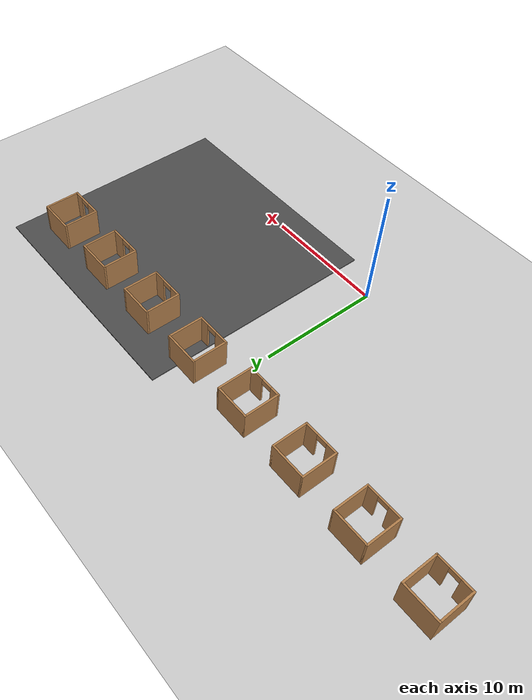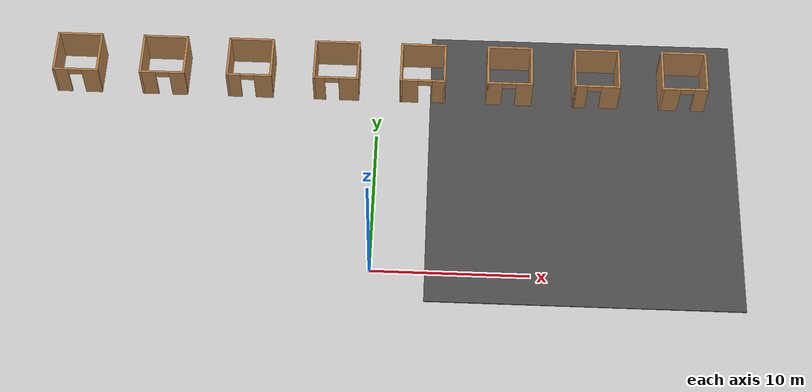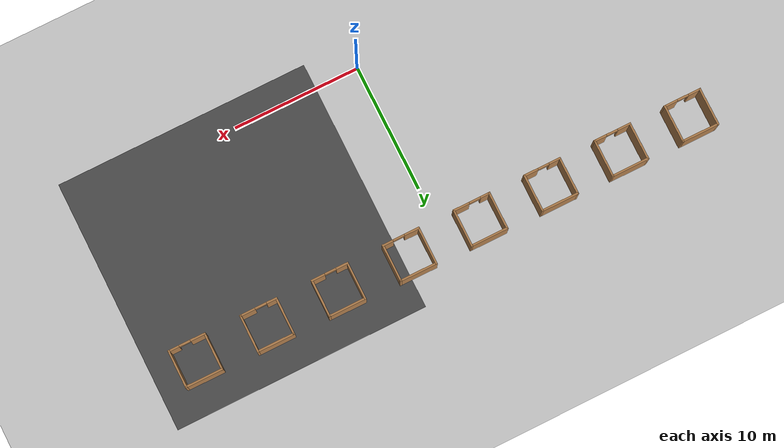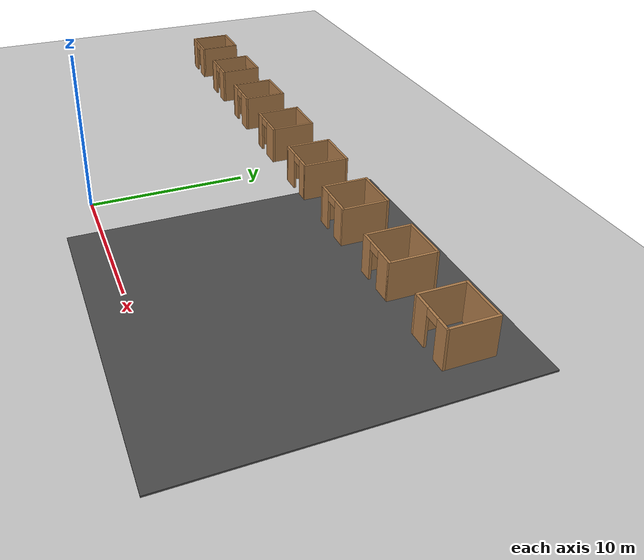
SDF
<sdf version="1.6">
 <world name="default">
  <model name="ground_plane">
   <static>1</static>
   <link name="link">
    <collision name="collision">
     <geometry><plane><normal>0 0 1</normal><size>100 100</size></plane></geometry>
     <surface>
      <contact><collide_bitmask>65535</collide_bitmask></contact>
      <friction><ode><mu>100</mu><mu2>50</mu2></ode></friction>
     </surface>
    </collision>
    <visual name="visual">
     <cast_shadows>0</cast_shadows>
     <geometry><plane><normal>0 0 1</normal><size>100 100</size></plane></geometry>
     <material>
      <script><uri>file://media/materials/scripts/gazebo.material</uri><name>Gazebo/Grey</name></script>
     </material>
    </visual>
   </link>
  </model>
  <model name="room_row_clone_clone_2">
   <pose>0.054178 14.3092 0 0 -0 3.14</pose>
   <link name="Wall_11">
    <collision name="Wall_11_Collision">
     <geometry><box><size>3 0.15 2.5</size></box></geometry>
     <pose>0 0 1.25 0 -0 0</pose>
    </collision>
    <visual name="Wall_11_Visual">
     <pose>0 0 1.25 0 -0 0</pose>
     <geometry><box><size>3 0.15 2.5</size></box></geometry>
     <material>
      <script><uri>file://media/materials/scripts/gazebo.material</uri><name>Gazebo/Wood</name></script>
      <ambient>1 1 1 1</ambient>
     </material>
     <meta><layer>0</layer></meta>
    </visual>
    <pose>1.425 0 0 0 -0 -1.5708</pose>
   </link>
   <link name="Wall_12">
    <collision name="Wall_12_Collision">
     <geometry><box><size>3 0.15 2.5</size></box></geometry>
     <pose>0 0 1.25 0 -0 0</pose>
    </collision>
    <visual name="Wall_12_Visual">
     <pose>0 0 1.25 0 -0 0</pose>
     <geometry><box><size>3 0.15 2.5</size></box></geometry>
     <material>
      <script><uri>file://media/materials/scripts/gazebo.material</uri><name>Gazebo/Wood</name></script>
      <ambient>1 1 1 1</ambient>
     </material>
     <meta><layer>0</layer></meta>
    </visual>
    <pose>2.85 -1.425 0 0 -0 0</pose>
   </link>
   <link name="Wall_13">
    <collision name="Wall_13_Collision">
     <geometry><box><size>3 0.15 2.5</size></box></geometry>
     <pose>0 0 1.25 0 -0 0</pose>
    </collision>
    <visual name="Wall_13_Visual">
     <pose>0 0 1.25 0 -0 0</pose>
     <geometry><box><size>3 0.15 2.5</size></box></geometry>
     <material>
      <script><uri>file://media/materials/scripts/gazebo.material</uri><name>Gazebo/Wood</name></script>
      <ambient>1 1 1 1</ambient>
     </material>
     <meta><layer>0</layer></meta>
    </visual>
    <pose>4.275 0 0 0 -0 1.5708</pose>
   </link>
   <link name="Wall_14">
    <pose>2.85 1.425 0 0 -0 3.14159</pose>
    <visual name="Wall_14_Visual_0">
     <pose>-1.10207 0 1.25 0 -0 0</pose>
     <geometry><box><size>0.795857 0.15 2.5</size></box></geometry>
     <material>
      <script><uri>file://media/materials/scripts/gazebo.material</uri><name>Gazebo/Wood</name></script>
      <ambient>1 1 1 1</ambient>
     </material>
     <meta><layer>0</layer></meta>
    </visual>
    <collision name="Wall_14_Collision_0">
     <geometry><box><size>0.795857 0.15 2.5</size></box></geometry>
     <pose>-1.10207 0 1.25 0 -0 0</pose>
    </collision>
    <visual name="Wall_14_Visual_1">
     <pose>0.847928 0 1.25 0 -0 0</pose>
     <geometry><box><size>1.30414 0.15 2.5</size></box></geometry>
     <material>
      <script><uri>file://media/materials/scripts/gazebo.material</uri><name>Gazebo/Wood</name></script>
      <ambient>1 1 1 1</ambient>
     </material>
     <meta><layer>0</layer></meta>
    </visual>
    <collision name="Wall_14_Collision_1">
     <geometry><box><size>1.30414 0.15 2.5</size></box></geometry>
     <pose>0.847928 0 1.25 0 -0 0</pose>
    </collision>
    <visual name="Wall_14_Visual_2">
     <pose>-0.254143 0 2.25 0 -0 0</pose>
     <geometry><box><size>0.9 0.15 0.5</size></box></geometry>
     <material>
      <script><uri>file://media/materials/scripts/gazebo.material</uri><name>Gazebo/Wood</name></script>
      <ambient>1 1 1 1</ambient>
     </material>
     <meta><layer>0</layer></meta>
    </visual>
    <collision name="Wall_14_Collision_2">
     <geometry><box><size>0.9 0.15 0.5</size></box></geometry>
     <pose>-0.254143 0 2.25 0 -0 0</pose>
    </collision>
   </link>
   <link name="Wall_17">
    <collision name="Wall_17_Collision">
     <geometry><box><size>3 0.15 2.5</size></box></geometry>
     <pose>0 0 1.25 0 -0 0</pose>
    </collision>
    <visual name="Wall_17_Visual">
     <pose>0 0 1.25 0 -0 0</pose>
     <geometry><box><size>3 0.15 2.5</size></box></geometry>
     <material>
      <script><uri>file://media/materials/scripts/gazebo.material</uri><name>Gazebo/Wood</name></script>
      <ambient>1 1 1 1</ambient>
     </material>
     <meta><layer>0</layer></meta>
    </visual>
    <pose>7.125 0 0 0 -0 -1.5708</pose>
   </link>
   <link name="Wall_18">
    <collision name="Wall_18_Collision">
     <geometry><box><size>3 0.15 2.5</size></box></geometry>
     <pose>0 0 1.25 0 -0 0</pose>
    </collision>
    <visual name="Wall_18_Visual">
     <pose>0 0 1.25 0 -0 0</pose>
     <geometry><box><size>3 0.15 2.5</size></box></geometry>
     <material>
      <script><uri>file://media/materials/scripts/gazebo.material</uri><name>Gazebo/Wood</name></script>
      <ambient>1 1 1 1</ambient>
     </material>
     <meta><layer>0</layer></meta>
    </visual>
    <pose>8.55 -1.425 0 0 -0 0</pose>
   </link>
   <link name="Wall_19">
    <collision name="Wall_19_Collision">
     <geometry><box><size>3 0.15 2.5</size></box></geometry>
     <pose>0 0 1.25 0 -0 0</pose>
    </collision>
    <visual name="Wall_19_Visual">
     <pose>0 0 1.25 0 -0 0</pose>
     <geometry><box><size>3 0.15 2.5</size></box></geometry>
     <material>
      <script><uri>file://media/materials/scripts/gazebo.material</uri><name>Gazebo/Wood</name></script>
      <ambient>1 1 1 1</ambient>
     </material>
     <meta><layer>0</layer></meta>
    </visual>
    <pose>9.975 0 0 0 -0 1.5708</pose>
   </link>
   <link name="Wall_20">
    <pose>8.55 1.425 0 0 -0 3.14159</pose>
    <visual name="Wall_20_Visual_0">
     <pose>-1.03119 0 1.25 0 -0 0</pose>
     <geometry><box><size>0.937612 0.15 2.5</size></box></geometry>
     <material>
      <script><uri>file://media/materials/scripts/gazebo.material</uri><name>Gazebo/Wood</name></script>
      <ambient>1 1 1 1</ambient>
     </material>
     <meta><layer>0</layer></meta>
    </visual>
    <collision name="Wall_20_Collision_0">
     <geometry><box><size>0.937612 0.15 2.5</size></box></geometry>
     <pose>-1.03119 0 1.25 0 -0 0</pose>
    </collision>
    <visual name="Wall_20_Visual_1">
     <pose>0.918806 0 1.25 0 -0 0</pose>
     <geometry><box><size>1.16239 0.15 2.5</size></box></geometry>
     <material>
      <script><uri>file://media/materials/scripts/gazebo.material</uri><name>Gazebo/Wood</name></script>
      <ambient>1 1 1 1</ambient>
     </material>
     <meta><layer>0</layer></meta>
    </visual>
    <collision name="Wall_20_Collision_1">
     <geometry><box><size>1.16239 0.15 2.5</size></box></geometry>
     <pose>0.918806 0 1.25 0 -0 0</pose>
    </collision>
    <visual name="Wall_20_Visual_2">
     <pose>-0.112388 0 2.25 0 -0 0</pose>
     <geometry><box><size>0.9 0.15 0.5</size></box></geometry>
     <material>
      <script><uri>file://media/materials/scripts/gazebo.material</uri><name>Gazebo/Wood</name></script>
      <ambient>1 1 1 1</ambient>
     </material>
     <meta><layer>0</layer></meta>
    </visual>
    <collision name="Wall_20_Collision_2">
     <geometry><box><size>0.9 0.15 0.5</size></box></geometry>
     <pose>-0.112388 0 2.25 0 -0 0</pose>
    </collision>
   </link>
   <link name="Wall_23">
    <collision name="Wall_23_Collision">
     <geometry><box><size>3 0.15 2.5</size></box></geometry>
     <pose>0 0 1.25 0 -0 0</pose>
    </collision>
    <visual name="Wall_23_Visual">
     <pose>0 0 1.25 0 -0 0</pose>
     <geometry><box><size>3 0.15 2.5</size></box></geometry>
     <material>
      <script><uri>file://media/materials/scripts/gazebo.material</uri><name>Gazebo/Wood</name></script>
      <ambient>1 1 1 1</ambient>
     </material>
     <meta><layer>0</layer></meta>
    </visual>
    <pose>-7.125 0 0 0 -0 -1.5708</pose>
   </link>
   <link name="Wall_24">
    <collision name="Wall_24_Collision">
     <geometry><box><size>3 0.15 2.5</size></box></geometry>
     <pose>0 0 1.25 0 -0 0</pose>
    </collision>
    <visual name="Wall_24_Visual">
     <pose>0 0 1.25 0 -0 0</pose>
     <geometry><box><size>3 0.15 2.5</size></box></geometry>
     <material>
      <script><uri>file://media/materials/scripts/gazebo.material</uri><name>Gazebo/Wood</name></script>
      <ambient>1 1 1 1</ambient>
     </material>
     <meta><layer>0</layer></meta>
    </visual>
    <pose>-8.55 -1.425 0 0 -0 3.14159</pose>
   </link>
   <link name="Wall_25">
    <collision name="Wall_25_Collision">
     <geometry><box><size>3 0.15 2.5</size></box></geometry>
     <pose>0 0 1.25 0 -0 0</pose>
    </collision>
    <visual name="Wall_25_Visual">
     <pose>0 0 1.25 0 -0 0</pose>
     <geometry><box><size>3 0.15 2.5</size></box></geometry>
     <material>
      <script><uri>file://media/materials/scripts/gazebo.material</uri><name>Gazebo/Wood</name></script>
      <ambient>1 1 1 1</ambient>
     </material>
     <meta><layer>0</layer></meta>
    </visual>
    <pose>-9.975 0 0 0 -0 1.5708</pose>
   </link>
   <link name="Wall_26">
    <pose>-8.55 1.425 0 0 -0 0</pose>
    <visual name="Wall_26_Visual_0">
     <pose>-0.952424 0 1.25 0 -0 0</pose>
     <geometry><box><size>1.09515 0.15 2.5</size></box></geometry>
     <material>
      <script><uri>file://media/materials/scripts/gazebo.material</uri><name>Gazebo/Wood</name></script>
      <ambient>1 1 1 1</ambient>
     </material>
     <meta><layer>0</layer></meta>
    </visual>
    <collision name="Wall_26_Collision_0">
     <geometry><box><size>1.09515 0.15 2.5</size></box></geometry>
     <pose>-0.952424 0 1.25 0 -0 0</pose>
    </collision>
    <visual name="Wall_26_Visual_1">
     <pose>0.997576 0 1.25 0 -0 0</pose>
     <geometry><box><size>1.00485 0.15 2.5</size></box></geometry>
     <material>
      <script><uri>file://media/materials/scripts/gazebo.material</uri><name>Gazebo/Wood</name></script>
      <ambient>1 1 1 1</ambient>
     </material>
     <meta><layer>0</layer></meta>
    </visual>
    <collision name="Wall_26_Collision_1">
     <geometry><box><size>1.00485 0.15 2.5</size></box></geometry>
     <pose>0.997576 0 1.25 0 -0 0</pose>
    </collision>
    <visual name="Wall_26_Visual_2">
     <pose>0.045152 0 2.25 0 -0 0</pose>
     <geometry><box><size>0.9 0.15 0.5</size></box></geometry>
     <material>
      <script><uri>file://media/materials/scripts/gazebo.material</uri><name>Gazebo/Wood</name></script>
      <ambient>1 1 1 1</ambient>
     </material>
     <meta><layer>0</layer></meta>
    </visual>
    <collision name="Wall_26_Collision_2">
     <geometry><box><size>0.9 0.15 0.5</size></box></geometry>
     <pose>0.045152 0 2.25 0 -0 0</pose>
    </collision>
   </link>
   <link name="Wall_29">
    <collision name="Wall_29_Collision">
     <geometry><box><size>3 0.15 2.5</size></box></geometry>
     <pose>0 0 1.25 0 -0 0</pose>
    </collision>
    <visual name="Wall_29_Visual">
     <pose>0 0 1.25 0 -0 0</pose>
     <geometry><box><size>3 0.15 2.5</size></box></geometry>
     <material>
      <script><uri>file://media/materials/scripts/gazebo.material</uri><name>Gazebo/Wood</name></script>
      <ambient>1 1 1 1</ambient>
     </material>
     <meta><layer>0</layer></meta>
    </visual>
    <pose>-12.825 0 0 0 -0 -1.5708</pose>
   </link>
   <link name="Wall_30">
    <collision name="Wall_30_Collision">
     <geometry><box><size>3 0.15 2.5</size></box></geometry>
     <pose>0 0 1.25 0 -0 0</pose>
    </collision>
    <visual name="Wall_30_Visual">
     <pose>0 0 1.25 0 -0 0</pose>
     <geometry><box><size>3 0.15 2.5</size></box></geometry>
     <material>
      <script><uri>file://media/materials/scripts/gazebo.material</uri><name>Gazebo/Wood</name></script>
      <ambient>1 1 1 1</ambient>
     </material>
     <meta><layer>0</layer></meta>
    </visual>
    <pose>-14.25 -1.425 0 0 -0 3.14159</pose>
   </link>
   <link name="Wall_31">
    <collision name="Wall_31_Collision">
     <geometry><box><size>3 0.15 2.5</size></box></geometry>
     <pose>0 0 1.25 0 -0 0</pose>
    </collision>
    <visual name="Wall_31_Visual">
     <pose>0 0 1.25 0 -0 0</pose>
     <geometry><box><size>3 0.15 2.5</size></box></geometry>
     <material>
      <script><uri>file://media/materials/scripts/gazebo.material</uri><name>Gazebo/Wood</name></script>
      <ambient>1 1 1 1</ambient>
     </material>
     <meta><layer>0</layer></meta>
    </visual>
    <pose>-15.675 0 0 0 -0 1.5708</pose>
   </link>
   <link name="Wall_32">
    <pose>-14.25 1.425 0 0 -0 0</pose>
    <visual name="Wall_32_Visual_0">
     <pose>-0.881547 0 1.25 0 -0 0</pose>
     <geometry><box><size>1.23691 0.15 2.5</size></box></geometry>
     <material>
      <script><uri>file://media/materials/scripts/gazebo.material</uri><name>Gazebo/Wood</name></script>
      <ambient>1 1 1 1</ambient>
     </material>
     <meta><layer>0</layer></meta>
    </visual>
    <collision name="Wall_32_Collision_0">
     <geometry><box><size>1.23691 0.15 2.5</size></box></geometry>
     <pose>-0.881547 0 1.25 0 -0 0</pose>
    </collision>
    <visual name="Wall_32_Visual_1">
     <pose>1.06845 0 1.25 0 -0 0</pose>
     <geometry><box><size>0.863093 0.15 2.5</size></box></geometry>
     <material>
      <script><uri>file://media/materials/scripts/gazebo.material</uri><name>Gazebo/Wood</name></script>
      <ambient>1 1 1 1</ambient>
     </material>
     <meta><layer>0</layer></meta>
    </visual>
    <collision name="Wall_32_Collision_1">
     <geometry><box><size>0.863093 0.15 2.5</size></box></geometry>
     <pose>1.06845 0 1.25 0 -0 0</pose>
    </collision>
    <visual name="Wall_32_Visual_2">
     <pose>0.186907 0 2.25 0 -0 0</pose>
     <geometry><box><size>0.9 0.15 0.5</size></box></geometry>
     <material>
      <script><uri>file://media/materials/scripts/gazebo.material</uri><name>Gazebo/Wood</name></script>
      <ambient>1 1 1 1</ambient>
     </material>
     <meta><layer>0</layer></meta>
    </visual>
    <collision name="Wall_32_Collision_2">
     <geometry><box><size>0.9 0.15 0.5</size></box></geometry>
     <pose>0.186907 0 2.25 0 -0 0</pose>
    </collision>
   </link>
   <link name="Wall_35">
    <collision name="Wall_35_Collision">
     <geometry><box><size>3 0.15 2.5</size></box></geometry>
     <pose>0 0 1.25 0 -0 0</pose>
    </collision>
    <visual name="Wall_35_Visual">
     <pose>0 0 1.25 0 -0 0</pose>
     <geometry><box><size>3 0.15 2.5</size></box></geometry>
     <material>
      <script><uri>file://media/materials/scripts/gazebo.material</uri><name>Gazebo/Wood</name></script>
      <ambient>1 1 1 1</ambient>
     </material>
     <meta><layer>0</layer></meta>
    </visual>
    <pose>12.825 0 0 0 -0 -1.5708</pose>
   </link>
   <link name="Wall_36">
    <collision name="Wall_36_Collision">
     <geometry><box><size>3 0.15 2.5</size></box></geometry>
     <pose>0 0 1.25 0 -0 0</pose>
    </collision>
    <visual name="Wall_36_Visual">
     <pose>0 0 1.25 0 -0 0</pose>
     <geometry><box><size>3 0.15 2.5</size></box></geometry>
     <material>
      <script><uri>file://media/materials/scripts/gazebo.material</uri><name>Gazebo/Wood</name></script>
      <ambient>1 1 1 1</ambient>
     </material>
     <meta><layer>0</layer></meta>
    </visual>
    <pose>14.25 -1.425 0 0 -0 0</pose>
   </link>
   <link name="Wall_37">
    <collision name="Wall_37_Collision">
     <geometry><box><size>3 0.15 2.5</size></box></geometry>
     <pose>0 0 1.25 0 -0 0</pose>
    </collision>
    <visual name="Wall_37_Visual">
     <pose>0 0 1.25 0 -0 0</pose>
     <geometry><box><size>3 0.15 2.5</size></box></geometry>
     <material>
      <script><uri>file://media/materials/scripts/gazebo.material</uri><name>Gazebo/Wood</name></script>
      <ambient>1 1 1 1</ambient>
     </material>
     <meta><layer>0</layer></meta>
    </visual>
    <pose>15.675 0 0 0 -0 1.5708</pose>
   </link>
   <link name="Wall_38">
    <pose>14.25 1.425 0 0 -0 3.14159</pose>
    <visual name="Wall_38_Visual_0">
     <pose>-0.960316 0 1.25 0 -0 0</pose>
     <geometry><box><size>1.07937 0.15 2.5</size></box></geometry>
     <material>
      <script><uri>file://media/materials/scripts/gazebo.material</uri><name>Gazebo/Wood</name></script>
      <ambient>1 1 1 1</ambient>
     </material>
     <meta><layer>0</layer></meta>
    </visual>
    <collision name="Wall_38_Collision_0">
     <geometry><box><size>1.07937 0.15 2.5</size></box></geometry>
     <pose>-0.960316 0 1.25 0 -0 0</pose>
    </collision>
    <visual name="Wall_38_Visual_1">
     <pose>0.989684 0 1.25 0 -0 0</pose>
     <geometry><box><size>1.02063 0.15 2.5</size></box></geometry>
     <material>
      <script><uri>file://media/materials/scripts/gazebo.material</uri><name>Gazebo/Wood</name></script>
      <ambient>1 1 1 1</ambient>
     </material>
     <meta><layer>0</layer></meta>
    </visual>
    <collision name="Wall_38_Collision_1">
     <geometry><box><size>1.02063 0.15 2.5</size></box></geometry>
     <pose>0.989684 0 1.25 0 -0 0</pose>
    </collision>
    <visual name="Wall_38_Visual_2">
     <pose>0.029367 0 2.25 0 -0 0</pose>
     <geometry><box><size>0.9 0.15 0.5</size></box></geometry>
     <material>
      <script><uri>file://media/materials/scripts/gazebo.material</uri><name>Gazebo/Wood</name></script>
      <ambient>1 1 1 1</ambient>
     </material>
     <meta><layer>0</layer></meta>
    </visual>
    <collision name="Wall_38_Collision_2">
     <geometry><box><size>0.9 0.15 0.5</size></box></geometry>
     <pose>0.029367 0 2.25 0 -0 0</pose>
    </collision>
   </link>
   <link name="Wall_41">
    <collision name="Wall_41_Collision">
     <geometry><box><size>3 0.15 2.5</size></box></geometry>
     <pose>0 0 1.25 0 -0 0</pose>
    </collision>
    <visual name="Wall_41_Visual">
     <pose>0 0 1.25 0 -0 0</pose>
     <geometry><box><size>3 0.15 2.5</size></box></geometry>
     <material>
      <script><uri>file://media/materials/scripts/gazebo.material</uri><name>Gazebo/Wood</name></script>
      <ambient>1 1 1 1</ambient>
     </material>
     <meta><layer>0</layer></meta>
    </visual>
    <pose>-18.525 0 0 0 -0 -1.5708</pose>
   </link>
   <link name="Wall_42">
    <collision name="Wall_42_Collision">
     <geometry><box><size>3 0.15 2.5</size></box></geometry>
     <pose>0 0 1.25 0 -0 0</pose>
    </collision>
    <visual name="Wall_42_Visual">
     <pose>0 0 1.25 0 -0 0</pose>
     <geometry><box><size>3 0.15 2.5</size></box></geometry>
     <material>
      <script><uri>file://media/materials/scripts/gazebo.material</uri><name>Gazebo/Wood</name></script>
      <ambient>1 1 1 1</ambient>
     </material>
     <meta><layer>0</layer></meta>
    </visual>
    <pose>-19.95 -1.425 0 0 -0 3.14159</pose>
   </link>
   <link name="Wall_45">
    <pose>-19.95 1.425 0 0 -0 3.14159</pose>
    <visual name="Wall_45_Visual_0">
     <pose>-0.89308 0 1.25 0 -0 0</pose>
     <geometry><box><size>1.21384 0.15 2.5</size></box></geometry>
     <material>
      <script><uri>file://media/materials/scripts/gazebo.material</uri><name>Gazebo/Wood</name></script>
      <ambient>1 1 1 1</ambient>
     </material>
     <meta><layer>0</layer></meta>
    </visual>
    <collision name="Wall_45_Collision_0">
     <geometry><box><size>1.21384 0.15 2.5</size></box></geometry>
     <pose>-0.89308 0 1.25 0 -0 0</pose>
    </collision>
    <visual name="Wall_45_Visual_1">
     <pose>1.05692 0 1.25 0 -0 0</pose>
     <geometry><box><size>0.886161 0.15 2.5</size></box></geometry>
     <material>
      <script><uri>file://media/materials/scripts/gazebo.material</uri><name>Gazebo/Wood</name></script>
      <ambient>1 1 1 1</ambient>
     </material>
     <meta><layer>0</layer></meta>
    </visual>
    <collision name="Wall_45_Collision_1">
     <geometry><box><size>0.886161 0.15 2.5</size></box></geometry>
     <pose>1.05692 0 1.25 0 -0 0</pose>
    </collision>
    <visual name="Wall_45_Visual_2">
     <pose>0.163839 0 2.25 0 -0 0</pose>
     <geometry><box><size>0.9 0.15 0.5</size></box></geometry>
     <material>
      <script><uri>file://media/materials/scripts/gazebo.material</uri><name>Gazebo/Wood</name></script>
      <ambient>1 1 1 1</ambient>
     </material>
     <meta><layer>0</layer></meta>
    </visual>
    <collision name="Wall_45_Collision_2">
     <geometry><box><size>0.9 0.15 0.5</size></box></geometry>
     <pose>0.163839 0 2.25 0 -0 0</pose>
    </collision>
   </link>
   <link name="Wall_46">
    <collision name="Wall_46_Collision">
     <geometry><box><size>3 0.15 2.5</size></box></geometry>
     <pose>0 0 1.25 0 -0 0</pose>
    </collision>
    <visual name="Wall_46_Visual">
     <pose>0 0 1.25 0 -0 0</pose>
     <geometry><box><size>3 0.15 2.5</size></box></geometry>
     <material>
      <script><uri>file://media/materials/scripts/gazebo.material</uri><name>Gazebo/Wood</name></script>
      <ambient>1 1 1 1</ambient>
     </material>
     <meta><layer>0</layer></meta>
    </visual>
    <pose>-21.375 0 0 0 -0 -1.5708</pose>
   </link>
   <link name="Wall_49">
    <collision name="Wall_49_Collision">
     <geometry><box><size>3 0.15 2.5</size></box></geometry>
     <pose>0 0 1.25 0 -0 0</pose>
    </collision>
    <visual name="Wall_49_Visual">
     <pose>0 0 1.25 0 -0 0</pose>
     <geometry><box><size>3 0.15 2.5</size></box></geometry>
     <material>
      <script><uri>file://media/materials/scripts/gazebo.material</uri><name>Gazebo/Wood</name></script>
      <ambient>1 1 1 1</ambient>
     </material>
     <meta><layer>0</layer></meta>
    </visual>
    <pose>18.525 0 0 0 -0 -1.5708</pose>
   </link>
   <link name="Wall_5">
    <pose>-2.85 1.425 0 0 -0 0</pose>
    <visual name="Wall_5_Visual_0">
     <pose>-1.05848 0 1.25 0 -0 0</pose>
     <geometry><box><size>0.883039 0.15 2.5</size></box></geometry>
     <material>
      <script><uri>file://media/materials/scripts/gazebo.material</uri><name>Gazebo/Wood</name></script>
      <ambient>1 1 1 1</ambient>
     </material>
     <meta><layer>0</layer></meta>
    </visual>
    <collision name="Wall_5_Collision_0">
     <geometry><box><size>0.883039 0.15 2.5</size></box></geometry>
     <pose>-1.05848 0 1.25 0 -0 0</pose>
    </collision>
    <visual name="Wall_5_Visual_1">
     <pose>0.891519 0 1.25 0 -0 0</pose>
     <geometry><box><size>1.21696 0.15 2.5</size></box></geometry>
     <material>
      <script><uri>file://media/materials/scripts/gazebo.material</uri><name>Gazebo/Wood</name></script>
      <ambient>1 1 1 1</ambient>
     </material>
     <meta><layer>0</layer></meta>
    </visual>
    <collision name="Wall_5_Collision_1">
     <geometry><box><size>1.21696 0.15 2.5</size></box></geometry>
     <pose>0.891519 0 1.25 0 -0 0</pose>
    </collision>
    <visual name="Wall_5_Visual_2">
     <pose>-0.166961 0 2.25 0 -0 0</pose>
     <geometry><box><size>0.9 0.15 0.5</size></box></geometry>
     <material>
      <script><uri>file://media/materials/scripts/gazebo.material</uri><name>Gazebo/Wood</name></script>
      <ambient>1 1 1 1</ambient>
     </material>
     <meta><layer>0</layer></meta>
    </visual>
    <collision name="Wall_5_Collision_2">
     <geometry><box><size>0.9 0.15 0.5</size></box></geometry>
     <pose>-0.166961 0 2.25 0 -0 0</pose>
    </collision>
   </link>
   <link name="Wall_51">
    <collision name="Wall_51_Collision">
     <geometry><box><size>3 0.15 2.5</size></box></geometry>
     <pose>0 0 1.25 0 -0 0</pose>
    </collision>
    <visual name="Wall_51_Visual">
     <pose>0 0 1.25 0 -0 0</pose>
     <geometry><box><size>3 0.15 2.5</size></box></geometry>
     <material>
      <script><uri>file://media/materials/scripts/gazebo.material</uri><name>Gazebo/Wood</name></script>
      <ambient>1 1 1 1</ambient>
     </material>
     <meta><layer>0</layer></meta>
    </visual>
    <pose>19.95 -1.425 0 0 -0 0</pose>
   </link>
   <link name="Wall_53">
    <collision name="Wall_53_Collision">
     <geometry><box><size>3 0.15 2.5</size></box></geometry>
     <pose>0 0 1.25 0 -0 0</pose>
    </collision>
    <visual name="Wall_53_Visual">
     <pose>0 0 1.25 0 -0 0</pose>
     <geometry><box><size>3 0.15 2.5</size></box></geometry>
     <material>
      <script><uri>file://media/materials/scripts/gazebo.material</uri><name>Gazebo/Wood</name></script>
      <ambient>1 1 1 1</ambient>
     </material>
     <meta><layer>0</layer></meta>
    </visual>
    <pose>21.375 0 0 0 -0 1.5708</pose>
   </link>
   <link name="Wall_54">
    <pose>19.95 1.425 0 0 -0 3.14159</pose>
    <visual name="Wall_54_Visual_0">
     <pose>-0.994975 0 1.25 0 -0 0</pose>
     <geometry><box><size>1.01005 0.15 2.5</size></box></geometry>
     <material>
      <script><uri>file://media/materials/scripts/gazebo.material</uri><name>Gazebo/Wood</name></script>
      <ambient>1 1 1 1</ambient>
     </material>
     <meta><layer>0</layer></meta>
    </visual>
    <collision name="Wall_54_Collision_0">
     <geometry><box><size>1.01005 0.15 2.5</size></box></geometry>
     <pose>-0.994975 0 1.25 0 -0 0</pose>
    </collision>
    <visual name="Wall_54_Visual_1">
     <pose>0.955025 0 1.25 0 -0 0</pose>
     <geometry><box><size>1.08995 0.15 2.5</size></box></geometry>
     <material>
      <script><uri>file://media/materials/scripts/gazebo.material</uri><name>Gazebo/Wood</name></script>
      <ambient>1 1 1 1</ambient>
     </material>
     <meta><layer>0</layer></meta>
    </visual>
    <collision name="Wall_54_Collision_1">
     <geometry><box><size>1.08995 0.15 2.5</size></box></geometry>
     <pose>0.955025 0 1.25 0 -0 0</pose>
    </collision>
    <visual name="Wall_54_Visual_2">
     <pose>-0.039949 0 2.25 0 -0 0</pose>
     <geometry><box><size>0.9 0.15 0.5</size></box></geometry>
     <material>
      <script><uri>file://media/materials/scripts/gazebo.material</uri><name>Gazebo/Wood</name></script>
      <ambient>1 1 1 1</ambient>
     </material>
     <meta><layer>0</layer></meta>
    </visual>
    <collision name="Wall_54_Collision_2">
     <geometry><box><size>0.9 0.15 0.5</size></box></geometry>
     <pose>-0.039949 0 2.25 0 -0 0</pose>
    </collision>
   </link>
   <link name="Wall_6">
    <collision name="Wall_6_Collision">
     <geometry><box><size>3 0.15 2.5</size></box></geometry>
     <pose>0 0 1.25 0 -0 0</pose>
    </collision>
    <visual name="Wall_6_Visual">
     <pose>0 0 1.25 0 -0 0</pose>
     <geometry><box><size>3 0.15 2.5</size></box></geometry>
     <material>
      <script><uri>file://media/materials/scripts/gazebo.material</uri><name>Gazebo/Wood</name></script>
      <ambient>1 1 1 1</ambient>
     </material>
     <meta><layer>0</layer></meta>
    </visual>
    <pose>-1.425 0 0 0 -0 -1.5708</pose>
   </link>
   <link name="Wall_7">
    <collision name="Wall_7_Collision">
     <geometry><box><size>3 0.15 2.5</size></box></geometry>
     <pose>0 0 1.25 0 -0 0</pose>
    </collision>
    <visual name="Wall_7_Visual">
     <pose>0 0 1.25 0 -0 0</pose>
     <geometry><box><size>3 0.15 2.5</size></box></geometry>
     <material>
      <script><uri>file://media/materials/scripts/gazebo.material</uri><name>Gazebo/Wood</name></script>
      <ambient>1 1 1 1</ambient>
     </material>
     <meta><layer>0</layer></meta>
    </visual>
    <pose>-2.85 -1.425 0 0 -0 3.14159</pose>
   </link>
   <link name="Wall_8">
    <collision name="Wall_8_Collision">
     <geometry><box><size>3 0.15 2.5</size></box></geometry>
     <pose>0 0 1.25 0 -0 0</pose>
    </collision>
    <visual name="Wall_8_Visual">
     <pose>0 0 1.25 0 -0 0</pose>
     <geometry><box><size>3 0.15 2.5</size></box></geometry>
     <material>
      <script><uri>file://media/materials/scripts/gazebo.material</uri><name>Gazebo/Wood</name></script>
      <ambient>1 1 1 1</ambient>
     </material>
     <meta><layer>0</layer></meta>
    </visual>
    <pose>-4.275 0 0 0 -0 1.5708</pose>
   </link>
   <static>1</static>
  </model>
  <model name="asphalt_plane">
   <static>1</static>
   <link name="link">
    <collision name="collision"><geometry><box><size>20 20 0.1</size></box></geometry></collision>
    <visual name="visual">
     <cast_shadows>0</cast_shadows>
     <geometry><box><size>20 20 0.1</size></box></geometry>
     <material>
      <script>
       <uri>model://asphalt_plane/materials/scripts</uri>
       <uri>model://asphalt_plane/materials/textures</uri>
       <name>vrc/asphalt</name>
      </script>
     </material>
    </visual>
   </link>
   <pose>13.4266 7.98499 0 0 -0 0</pose>
  </model>
 </world>
</sdf>
